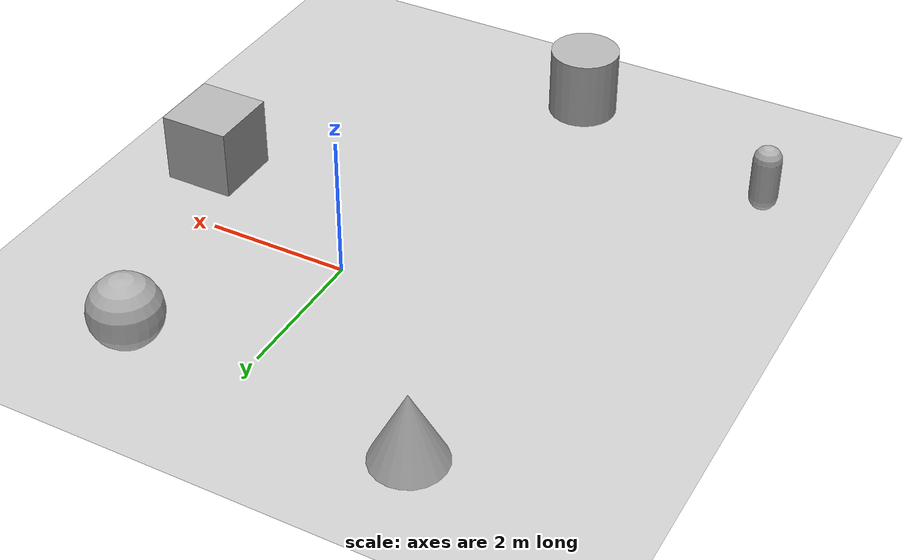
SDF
<sdf version='1.10'>
  <world name='empty'>
    <physics name='1ms' type='ignored'>
      <max_step_size>0.001</max_step_size>
      <real_time_factor>1</real_time_factor>
      <real_time_update_rate>1000</real_time_update_rate>
    </physics>
    <plugin name='gz::sim::systems::Physics' filename='gz-sim-physics-system'/>
    <plugin name='gz::sim::systems::UserCommands' filename='gz-sim-user-commands-system'/>
    <plugin name='gz::sim::systems::SceneBroadcaster' filename='gz-sim-scene-broadcaster-system'/>
    <plugin name='gz::sim::systems::Contact' filename='gz-sim-contact-system'/>
    <plugin name='gz::sim::systems::Sensors' filename='gz-sim-sensors-system'>
      <render_engine>ogre2</render_engine>
    </plugin>
    <gravity>0 0 -9.8000000000000007</gravity>
    <magnetic_field>5.5644999999999998e-06 2.2875799999999999e-05 -4.2388400000000002e-05</magnetic_field>
    <atmosphere type='adiabatic'/>
    <scene>
      <ambient>0.400000006 0.400000006 0.400000006 1</ambient>
      <background>0.699999988 0.699999988 0.699999988 1</background>
      <shadows>true</shadows>
    </scene>
    <model name='ground_plane'>
      <static>true</static>
      <link name='link'>
        <collision name='collision'>
          <geometry>
            <plane>
              <normal>0 0 1</normal>
              <size>100 100</size>
            </plane>
          </geometry>
          <surface>
            <friction>
              <ode/>
            </friction>
            <bounce/>
            <contact/>
          </surface>
        </collision>
        <visual name='visual'>
          <geometry>
            <plane>
              <normal>0 0 1</normal>
              <size>100 100</size>
            </plane>
          </geometry>
          <material>
            <ambient>0.800000012 0.800000012 0.800000012 1</ambient>
            <diffuse>0.800000012 0.800000012 0.800000012 1</diffuse>
            <specular>0.800000012 0.800000012 0.800000012 1</specular>
          </material>
        </visual>
        <pose>0 0 0 0 0 0</pose>
        <inertial>
          <pose>0 0 0 0 0 0</pose>
          <mass>1</mass>
          <inertia>
            <ixx>1</ixx>
            <ixy>0</ixy>
            <ixz>0</ixz>
            <iyy>1</iyy>
            <iyz>0</iyz>
            <izz>1</izz>
          </inertia>
        </inertial>
        <enable_wind>false</enable_wind>
      </link>
      <pose>0 0 0 0 0 0</pose>
      <self_collide>false</self_collide>
    </model>
    <model name='cone'>
      <pose>-2.5028810648451998 2.6385436042388872 0.5 0 0 0</pose>
      <link name='cone_link'>
        <inertial>
          <inertia>
            <ixx>0.074999999999999997</ixx>
            <ixy>0</ixy>
            <ixz>0</ixz>
            <iyy>0.074999999999999997</iyy>
            <iyz>0</iyz>
            <izz>0.074999999999999997</izz>
          </inertia>
          <mass>1</mass>
          <pose>0 0 0 0 0 0</pose>
        </inertial>
        <collision name='cone_collision'>
          <geometry>
            <cone>
              <radius>0.5</radius>
              <length>1</length>
            </cone>
          </geometry>
          <surface>
            <friction>
              <ode/>
            </friction>
            <bounce/>
            <contact/>
          </surface>
        </collision>
        <visual name='cone_visual'>
          <geometry>
            <cone>
              <radius>0.5</radius>
              <length>1</length>
            </cone>
          </geometry>
          <material>
            <ambient>0.300000012 0.300000012 0.300000012 1</ambient>
            <diffuse>0.699999988 0.699999988 0.699999988 1</diffuse>
            <specular>1 1 1 1</specular>
          </material>
        </visual>
        <pose>0 0 0 0 0 0</pose>
        <enable_wind>false</enable_wind>
      </link>
      <static>false</static>
      <self_collide>false</self_collide>
    </model>
    <model name='sphere'>
      <pose>1.5763369106096334 2.4854216298160718 0.5 0 0 0</pose>
      <link name='sphere_link'>
        <inertial>
          <inertia>
            <ixx>0.10000000000000001</ixx>
            <ixy>0</ixy>
            <ixz>0</ixz>
            <iyy>0.10000000000000001</iyy>
            <iyz>0</iyz>
            <izz>0.10000000000000001</izz>
          </inertia>
          <mass>1</mass>
          <pose>0 0 0 0 0 0</pose>
        </inertial>
        <collision name='sphere_collision'>
          <geometry>
            <sphere>
              <radius>0.5</radius>
            </sphere>
          </geometry>
          <surface>
            <friction>
              <ode/>
            </friction>
            <bounce/>
            <contact/>
          </surface>
        </collision>
        <visual name='sphere_visual'>
          <geometry>
            <sphere>
              <radius>0.5</radius>
            </sphere>
          </geometry>
          <material>
            <ambient>0.300000012 0.300000012 0.300000012 1</ambient>
            <diffuse>0.699999988 0.699999988 0.699999988 1</diffuse>
            <specular>1 1 1 1</specular>
          </material>
        </visual>
        <pose>0 0 0 0 0 0</pose>
        <enable_wind>false</enable_wind>
      </link>
      <static>false</static>
      <self_collide>false</self_collide>
    </model>
    <model name='box'>
      <pose>2.7307446295975364 -1.1660151032054016 0.5 0 0 0</pose>
      <link name='box_link'>
        <inertial>
          <inertia>
            <ixx>0.16666</ixx>
            <ixy>0</ixy>
            <ixz>0</ixz>
            <iyy>0.16666</iyy>
            <iyz>0</iyz>
            <izz>0.16666</izz>
          </inertia>
          <mass>1</mass>
          <pose>0 0 0 0 0 0</pose>
        </inertial>
        <collision name='box_collision'>
          <geometry>
            <box>
              <size>1 1 1</size>
            </box>
          </geometry>
          <surface>
            <friction>
              <ode/>
            </friction>
            <bounce/>
            <contact/>
          </surface>
        </collision>
        <visual name='box_visual'>
          <geometry>
            <box>
              <size>1 1 1</size>
            </box>
          </geometry>
          <material>
            <ambient>0.300000012 0.300000012 0.300000012 1</ambient>
            <diffuse>0.699999988 0.699999988 0.699999988 1</diffuse>
            <specular>1 1 1 1</specular>
          </material>
        </visual>
        <pose>0 0 0 0 0 0</pose>
        <enable_wind>false</enable_wind>
      </link>
      <static>false</static>
      <self_collide>false</self_collide>
    </model>
    <model name='cylinder'>
      <pose>-1.1413148925771619 -5.0510101676839474 0.5 0 0 0</pose>
      <link name='cylinder_link'>
        <inertial>
          <inertia>
            <ixx>0.14580000000000001</ixx>
            <ixy>0</ixy>
            <ixz>0</ixz>
            <iyy>0.14580000000000001</iyy>
            <iyz>0</iyz>
            <izz>0.125</izz>
          </inertia>
          <mass>1</mass>
          <pose>0 0 0 0 0 0</pose>
        </inertial>
        <collision name='cylinder_collision'>
          <geometry>
            <cylinder>
              <radius>0.5</radius>
              <length>1</length>
            </cylinder>
          </geometry>
          <surface>
            <friction>
              <ode/>
            </friction>
            <bounce/>
            <contact/>
          </surface>
        </collision>
        <visual name='cylinder_visual'>
          <geometry>
            <cylinder>
              <radius>0.5</radius>
              <length>1</length>
            </cylinder>
          </geometry>
          <material>
            <ambient>0.300000012 0.300000012 0.300000012 1</ambient>
            <diffuse>0.699999988 0.699999988 0.699999988 1</diffuse>
            <specular>1 1 1 1</specular>
          </material>
        </visual>
        <pose>0 0 0 0 0 0</pose>
        <enable_wind>false</enable_wind>
      </link>
      <static>false</static>
      <self_collide>false</self_collide>
    </model>
    <model name='capsule'>
      <pose>-4.364763548454496 -3.9481818422113126 0.5 0 0 0</pose>
      <link name='capsule_link'>
        <inertial>
          <inertia>
            <ixx>0.074153999999999998</ixx>
            <ixy>0</ixy>
            <ixz>0</ixz>
            <iyy>0.074153999999999998</iyy>
            <iyz>0</iyz>
            <izz>0.018769000000000001</izz>
          </inertia>
          <mass>1</mass>
          <pose>0 0 0 0 0 0</pose>
        </inertial>
        <collision name='capsule_collision'>
          <geometry>
            <capsule>
              <radius>0.20000000000000001</radius>
              <length>0.59999999999999998</length>
            </capsule>
          </geometry>
          <surface>
            <friction>
              <ode/>
            </friction>
            <bounce/>
            <contact/>
          </surface>
        </collision>
        <visual name='capsule_visual'>
          <geometry>
            <capsule>
              <radius>0.20000000000000001</radius>
              <length>0.59999999999999998</length>
            </capsule>
          </geometry>
          <material>
            <ambient>0.300000012 0.300000012 0.300000012 1</ambient>
            <diffuse>0.699999988 0.699999988 0.699999988 1</diffuse>
            <specular>1 1 1 1</specular>
          </material>
        </visual>
        <pose>0 0 0 0 0 0</pose>
        <enable_wind>false</enable_wind>
      </link>
      <static>false</static>
      <self_collide>false</self_collide>
    </model>
    <light name='sun' type='directional'>
      <pose>0 0 10 0 0 0</pose>
      <cast_shadows>true</cast_shadows>
      <intensity>1</intensity>
      <direction>-0.5 0.10000000000000001 -0.90000000000000002</direction>
      <diffuse>0.800000012 0.800000012 0.800000012 1</diffuse>
      <specular>0.200000003 0.200000003 0.200000003 1</specular>
      <attenuation>
        <range>1000</range>
        <linear>0.01</linear>
        <constant>0.90000000000000002</constant>
        <quadratic>0.001</quadratic>
      </attenuation>
      <spot>
        <inner_angle>0</inner_angle>
        <outer_angle>0</outer_angle>
        <falloff>0</falloff>
      </spot>
    </light>
  </world>
</sdf>
